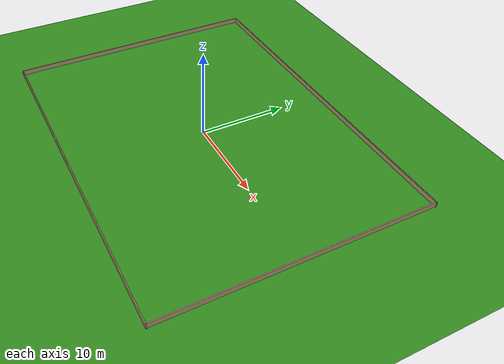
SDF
<?xml version="1.0"?>
<sdf version="1.9">
  <world name="empty_garden">

    <!-- ================================================================
         Physics
         ================================================================ -->
    <physics name="default_physics" default="true" type="ode">
      <max_step_size>0.001</max_step_size>
      <real_time_factor>1.0</real_time_factor>
      <real_time_update_rate>1000</real_time_update_rate>
      <ode>
        <solver>
          <type>quick</type>
          <iters>150</iters>
          <sor>1.4</sor>
        </solver>
        <constraints>
          <cfm>0.0</cfm>
          <erp>0.2</erp>
          <contact_max_correcting_vel>10.0</contact_max_correcting_vel>
          <contact_surface_layer>0.001</contact_surface_layer>
        </constraints>
      </ode>
    </physics>

    <!-- ================================================================
         Required Ignition Fortress plugins
         ================================================================ -->
    <plugin filename="gz-sim-physics-system"
            name="gz::sim::systems::Physics"/>

    <plugin filename="gz-sim-user-commands-system"
            name="gz::sim::systems::UserCommands"/>

    <plugin filename="gz-sim-scene-broadcaster-system"
            name="gz::sim::systems::SceneBroadcaster"/>

    <plugin filename="gz-sim-contact-system"
            name="gz::sim::systems::Contact"/>

    <plugin filename="gz-sim-imu-system"
            name="gz::sim::systems::Imu"/>

    <plugin filename="gz-sim-navsat-system"
            name="gz::sim::systems::NavSat"/>

    <spherical_coordinates>
      <surface_model>EARTH_WGS84</surface_model>
      <world_frame_orientation>ENU</world_frame_orientation>
      <latitude_deg>48.137154</latitude_deg>
      <longitude_deg>11.576124</longitude_deg>
      <elevation>520.0</elevation>
      <heading_deg>0</heading_deg>
    </spherical_coordinates>

    <plugin filename="gz-sim-sensors-system"
            name="gz::sim::systems::Sensors">
      <render_engine>ogre2</render_engine>
    </plugin>

    <!-- ================================================================
         Lighting
         ================================================================ -->
    <light name="sun" type="directional">
      <cast_shadows>true</cast_shadows>
      <pose>0 0 10 0 0 0</pose>
      <diffuse>0.9 0.9 0.9 1</diffuse>
      <specular>0.3 0.3 0.3 1</specular>
      <direction>-0.5 0.1 -0.9</direction>
      <attenuation>
        <range>1000</range>
        <constant>0.9</constant>
        <linear>0.01</linear>
        <quadratic>0.001</quadratic>
      </attenuation>
    </light>

    <scene>
      <ambient>0.6 0.6 0.6 1.0</ambient>
      <background>0.53 0.81 0.92 1.0</background>
      <shadows>true</shadows>
    </scene>

    <!-- ================================================================
         Ground plane — grass colour
         ================================================================ -->
    <model name="ground_plane">
      <static>true</static>
      <link name="link">
        <collision name="collision">
          <geometry>
            <plane>
              <normal>0 0 1</normal>
              <size>60 60</size>
            </plane>
          </geometry>
          <surface>
            <friction>
              <ode>
                <mu>0.8</mu>
                <mu2>0.8</mu2>
              </ode>
            </friction>
          </surface>
        </collision>
        <visual name="visual">
          <geometry>
            <plane>
              <normal>0 0 1</normal>
              <size>60 60</size>
            </plane>
          </geometry>
          <material>
            <ambient>0.18 0.45 0.10 1</ambient>
            <diffuse>0.20 0.55 0.12 1</diffuse>
            <specular>0.05 0.05 0.05 1</specular>
          </material>
        </visual>
      </link>
    </model>

    <!-- ================================================================
         Garden boundary walls (40 × 30 m)
         ================================================================ -->

    <!-- North wall  y = +15.0 -->
    <model name="wall_north">
      <static>true</static>
      <pose>0 15.0 0.30 0 0 0</pose>
      <link name="link">
        <collision name="collision">
          <geometry><box><size>40.2 0.1 0.6</size></box></geometry>
        </collision>
        <visual name="visual">
          <geometry><box><size>40.2 0.1 0.6</size></box></geometry>
          <material>
            <ambient>0.65 0.55 0.40 1</ambient>
            <diffuse>0.70 0.60 0.45 1</diffuse>
          </material>
        </visual>
      </link>
    </model>

    <!-- South wall  y = -15.0 -->
    <model name="wall_south">
      <static>true</static>
      <pose>0 -15.0 0.30 0 0 0</pose>
      <link name="link">
        <collision name="collision">
          <geometry><box><size>40.2 0.1 0.6</size></box></geometry>
        </collision>
        <visual name="visual">
          <geometry><box><size>40.2 0.1 0.6</size></box></geometry>
          <material>
            <ambient>0.65 0.55 0.40 1</ambient>
            <diffuse>0.70 0.60 0.45 1</diffuse>
          </material>
        </visual>
      </link>
    </model>

    <!-- West wall  x = -20.0 -->
    <model name="wall_west">
      <static>true</static>
      <pose>-20.0 0 0.30 0 0 1.5708</pose>
      <link name="link">
        <collision name="collision">
          <geometry><box><size>30.0 0.1 0.6</size></box></geometry>
        </collision>
        <visual name="visual">
          <geometry><box><size>30.0 0.1 0.6</size></box></geometry>
          <material>
            <ambient>0.65 0.55 0.40 1</ambient>
            <diffuse>0.70 0.60 0.45 1</diffuse>
          </material>
        </visual>
      </link>
    </model>

    <!-- East wall  x = +20.0 -->
    <model name="wall_east">
      <static>true</static>
      <pose>20.0 0 0.30 0 0 1.5708</pose>
      <link name="link">
        <collision name="collision">
          <geometry><box><size>30.0 0.1 0.6</size></box></geometry>
        </collision>
        <visual name="visual">
          <geometry><box><size>30.0 0.1 0.6</size></box></geometry>
          <material>
            <ambient>0.65 0.55 0.40 1</ambient>
            <diffuse>0.70 0.60 0.45 1</diffuse>
          </material>
        </visual>
      </link>
    </model>

  </world>
</sdf>
